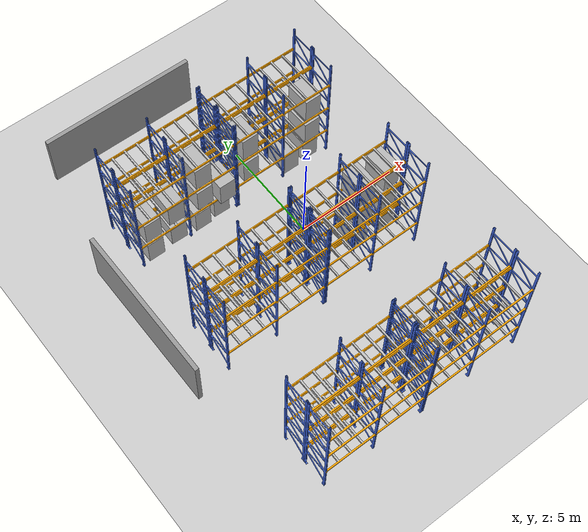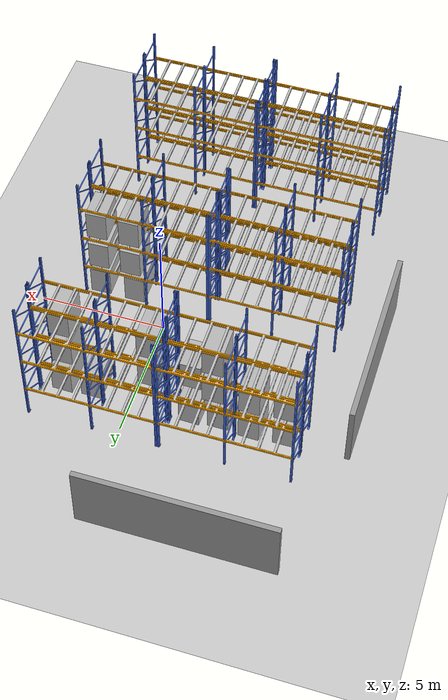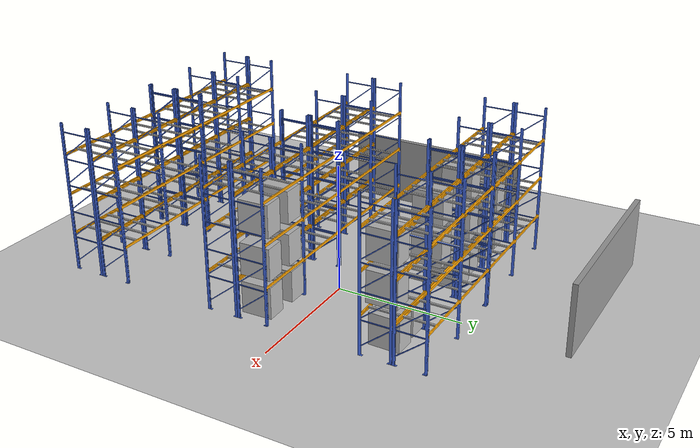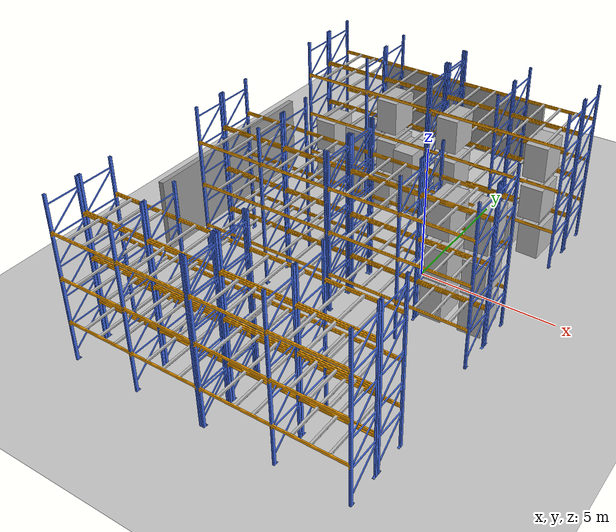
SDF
<sdf version="1.5">
 <world name="default">
  <include><uri>model://sun</uri></include>
  <include><uri>model://ground_plane</uri></include>
  <include><uri>model://asphalt_plane</uri></include>
  <plugin name="ros_interface_plugin" filename="librotors_gazebo_ros_interface_plugin.so"/>
  <physics name="default_physics" default="0" type="ode">
   <gravity>0 0 -9.8066</gravity>
   <ode>
    <solver>
     <type>quick</type>
     <iters>10</iters>
     <sor>1.3</sor>
     <use_dynamic_moi_rescaling>0</use_dynamic_moi_rescaling>
    </solver>
    <constraints>
     <cfm>0</cfm>
     <erp>0.2</erp>
     <contact_max_correcting_vel>100</contact_max_correcting_vel>
     <contact_surface_layer>0.001</contact_surface_layer>
    </constraints>
   </ode>
   <max_step_size>0.002</max_step_size>
   <real_time_factor>1</real_time_factor>
   <real_time_update_rate>500</real_time_update_rate>
   <magnetic_field>6e-06 2.3e-05 -4.2e-05</magnetic_field>
  </physics>
  <include><name>shelves 1</name><uri>model://shelves_high2</uri><pose>1 3.4 0   0 0 0</pose></include>
  <include><name>shelves 2</name><uri>model://shelves_high2</uri><pose>-4.13394 3.4 0 0 -0 0</pose></include>
  <include><name>shelves 3</name><uri>model://shelves_high2</uri><pose>1 4.7 0   0 0 0</pose></include>
  <include><name>shelves 4</name><uri>model://shelves_high2</uri><pose>-4.13394 4.7 0 0 -0 0</pose></include>
  <include>
   <name>shelves 5</name>
   <uri>model://shelves_high2_no_collision</uri>
   <pose>1 -1.5 0   0 0 0</pose>
  </include>
  <include>
   <name>shelves 6</name>
   <uri>model://shelves_high2_no_collision</uri>
   <pose>-4.13394 -1.5 0 0 -0 0</pose>
  </include>
  <include>
   <name>shelves 7</name>
   <uri>model://shelves_high2_no_collision</uri>
   <pose>1 -2.8 0   0 0 0</pose>
  </include>
  <include>
   <name>shelves 8</name>
   <uri>model://shelves_high2_no_collision</uri>
   <pose>-4.13394 -2.8 0 0 -0 0</pose>
  </include>
  <include>
   <name>shelves 9</name>
   <uri>model://shelves_high2_no_collision</uri>
   <pose>1 -7.8 0   0 0 0</pose>
  </include>
  <include>
   <name>shelves 10</name>
   <uri>model://shelves_high2_no_collision</uri>
   <pose>-4.13394 -7.8 0 0 -0 0</pose>
  </include>
  <include>
   <name>shelves 11</name>
   <uri>model://shelves_high2_no_collision</uri>
   <pose>1 -9.1 0   0 0 0</pose>
  </include>
  <include>
   <name>shelves 12</name>
   <uri>model://shelves_high2_no_collision</uri>
   <pose>-4.13394 -9.1 0 0 -0 0</pose>
  </include>
  <include>
   <name>pallet 1 box</name>
   <uri>model://big_box3</uri>
   <pose>1.48626 3.390705 0.760253 0 0.000143 -1.57317</pose>
  </include>
  <include>
   <name>pallet 4 box</name>
   <uri>model://big_box3</uri>
   <pose>-2.37439 3.440964 0.776474 0 0 -1.59804</pose>
  </include>
  <include>
   <name>pallet 7 box</name>
   <uri>model://big_box4</uri>
   <pose>2.61297 3.464591 0.774725 0 0 -1.59992</pose>
  </include>
  <include>
   <name>pallet 10 box</name>
   <uri>model://big_box3</uri>
   <pose>-3.45548 3.349857 0.774725 0 0 -1.56894</pose>
  </include>
  <include>
   <name>pallet 11 box</name>
   <uri>model://big_box4</uri>
   <pose>-4.67439 3.440964 0.776474 0 0 -1.59804</pose>
  </include>
  <include>
   <name>pallet 12 box</name>
   <uri>model://big_box3</uri>
   <pose>-5.95548 3.349857 0.774725 0 0 -1.56894</pose>
  </include>
  <include>
   <name>pallet 2 box</name>
   <uri>model://big_box3</uri>
   <pose>-3.25548 3.349857 2.3397 0 0 -1.56894</pose>
  </include>
  <include>
   <name>pallet 8 box</name>
   <uri>model://big_box4</uri>
   <pose>2.56918 3.321158 2.35696 0 0 -1.56652</pose>
  </include>
  <include>
   <name>pallet 9 box</name>
   <uri>model://big_box4</uri>
   <pose>-2.30257 2.987644 2.35696 0 0 -1.57937</pose>
  </include>
  <include>
   <name>pallet 13 box</name>
   <uri>model://big_box3</uri>
   <pose>-4.67439 3.440964 2.35696 0 0 -1.59804</pose>
  </include>
  <include>
   <name>pallet 14 box</name>
   <uri>model://big_box4</uri>
   <pose>-5.95548 3.349857 2.35696 0 0 -1.56894</pose>
  </include>
  <include>
   <name>pallet 19 box</name>
   <uri>model://big_box3</uri>
   <pose>-0.8 3.337637 2.3397 0 0 -1.56894</pose>
  </include>
  <include>
   <name>pallet 20 box</name>
   <uri>model://big_box4</uri>
   <pose>-3.25548 3.349857 3.97286 0 0 -1.56894</pose>
  </include>
  <include>
   <name>pallet 21 box</name>
   <uri>model://big_box3</uri>
   <pose>2.56918 3.321158 3.97286 0 0 -1.56652</pose>
  </include>
  <include>
   <name>pallet 22 box</name>
   <uri>model://big_box4</uri>
   <pose>-0.8 3.337637 3.97286 0 0 -1.56894</pose>
  </include>
  <include>
   <name>pallet B-0-1 box</name>
   <uri>model://big_box3</uri>
   <pose>1.48626 -1.5 0.760253 0 0.000143 1.57317</pose>
  </include>
  <include>
   <name>pallet B-0-2 box</name>
   <uri>model://big_box4</uri>
   <pose>2.9 -1.5 0.774725 0 0 1.59992</pose>
  </include>
  <include>
   <name>pallet B-1-1 box</name>
   <uri>model://big_box3</uri>
   <pose>1.6 -1.5 2.30 0 0.000143 1.57317</pose>
   <static>true</static>
  </include>
  <include>
   <name>pallet B-1-2 box</name>
   <uri>model://big_box3</uri>
   <pose>2.9 -1.5 2.30 0 0 1.59992</pose>
   <static>true</static>
  </include>
  <include>
   <name>pallet B-2-1 box</name>
   <uri>model://big_box4</uri>
   <pose>1.6 -1.5 3.97 0 0.000143 1.57317</pose>
   <static>true</static>
  </include>
  <include>
   <name>pallet B-2-2 box</name>
   <uri>model://big_box3</uri>
   <pose>2.9 -1.5 3.97 0 0 1.59992</pose>
   <static>true</static>
  </include>
  <include><name>grey_wall</name><uri>model://grey_wall</uri><pose>-8.34545 0 0 0 0 -1.57</pose></include>
  <include><name>grey_wall2</name><uri>model://grey_wall</uri><pose>-3.5 9 0 0 0 0</pose></include>
 </world>
</sdf>

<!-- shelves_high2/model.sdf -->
<sdf version="1.5">
  <model name="Shelves high 2">
    <static>true</static>
    <link name="link">
      <collision name="collision">
        <geometry>
          <mesh>
            <uri>model://shelves_high2/meshes/shelves_high2_collision.dae</uri>
            <scale>1 1.2 1.2</scale>
          </mesh>
        </geometry>
      </collision>
      <visual name="visual">
        <geometry>
          <mesh>
            <uri>model://shelves_high2/meshes/shelves_high2.dae</uri>
            <scale>1 1.2 1.2</scale>
          </mesh>
        </geometry>
      </visual>
    </link>
  </model>
</sdf>

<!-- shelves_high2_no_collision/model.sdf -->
<sdf version="1.5">
  <model name="Shelves high 2 - no collision">
    <static>true</static>
    <link name="link">
      <visual name="visual">
        <geometry>
          <mesh>
            <uri>model://shelves_high2_no_collision/meshes/shelves_high2.dae</uri>
            <scale>1 1.2 1.2</scale>
          </mesh>
        </geometry>
      </visual>
    </link>
  </model>
</sdf>

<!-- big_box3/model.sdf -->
<sdf version="1.5">
  <model name="big_box3">
    <pose>0 0 0.625  0 0 0</pose>
    <static>false</static>
    <link name="link">
      <inertial>
        <mass>40.0</mass>
        <inertia>
          <ixx>1</ixx>
          <ixy>0</ixy>
          <ixz>0</ixz>
          <iyy>1</iyy>
          <iyz>0</iyz>
          <izz>1</izz>
        </inertia>
      </inertial>

      <collision name="collision">
        <geometry>
          <box>
              <size>1.20 0.80 1.25</size>
          </box>
        </geometry>
	<surface>
          <contact>
            <ode>
              <max_vel>0.1</max_vel>
              <min_depth>0.001</min_depth>
            </ode>
          </contact>
        </surface>
      </collision>
      <visual name="visual">
        <geometry>
          <mesh>
            <uri>model://big_box3/meshes/big_box.dae</uri>
          </mesh>
	</geometry>
      </visual>
    </link>
  </model>
</sdf>

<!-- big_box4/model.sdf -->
<sdf version="1.5">
  <model name="Big box 4">
    <pose>0 0 0.625  0 0 0</pose>
    <static>false</static>
    <link name="link">
      <inertial>
        <mass>40.0</mass>
        <inertia>
          <ixx>1</ixx>
          <ixy>0</ixy>
          <ixz>0</ixz>
          <iyy>1</iyy>
          <iyz>0</iyz>
          <izz>1</izz>
        </inertia>
      </inertial>

      <collision name="collision">
        <geometry>
          <box>
              <size>1.20 0.80 1.25</size>
          </box>
        </geometry>
	<surface>
          <contact>
            <ode>
              <max_vel>0.1</max_vel>
              <min_depth>0.001</min_depth>
            </ode>
          </contact>
        </surface>
      </collision>
      <visual name="visual">
        <geometry>
          <mesh>
            <uri>model://big_box4/meshes/big_box.dae</uri>
          </mesh>
	</geometry>
      </visual>
    </link>
  </model>
</sdf>

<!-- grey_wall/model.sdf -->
<sdf version="1.5">
  <model name="grey_wall">
    <static>true</static>
    <link name="link">
      <pose>0 0 1.4 0 0 0</pose>
      <collision name="collision">
        <geometry>
          <box>
            <size>7.5 0.2 2.8</size>
          </box>
        </geometry>
      </collision>
      <visual name="visual">
        <cast_shadows>false</cast_shadows>
        <geometry>
          <box>
            <size>7.5 0.2 2.8</size>
          </box>
        </geometry>
        <material>
          <script>
            <uri>model://../model_source/models/grey_wall/materials/scripts</uri>
            <uri>model://../model_source/models/grey_wall/materials/textures</uri>
            <name>vrc/grey_wall</name>
          </script>
        </material>
      </visual>
    </link>
  </model>
</sdf>
